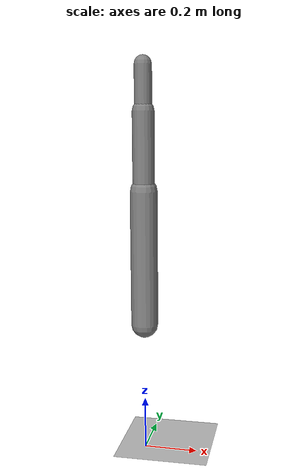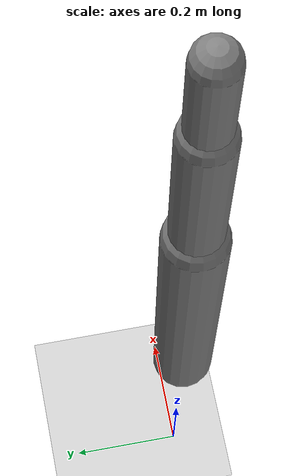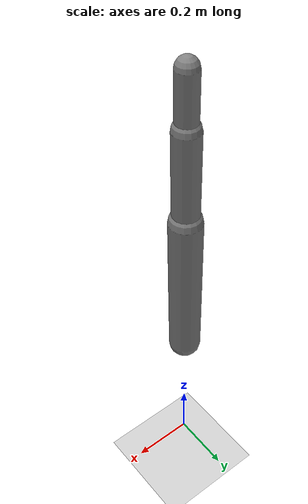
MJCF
<?xml version='1.0' encoding='UTF-8'?>
<mujoco model="RobotModel">
  <option gravity="0 0 -9.81" timestep="0.002" solver="CG" iterations="500" integrator="Euler"/>
  <worldbody>
    <geom name="Floor" type="plane" size="10 10 0.1" pos="0 0 0" rgba="0.8 0.8 0.8 1"/>
    <body name="Limb0" pos="0 0 0.5">
      <geom type="capsule" fromto="0 0 0 0 0 0.5" size="0.05" density="1000" contype="0" conaffinity="0"/>
      <body name="Limb0_8ba9c83d" pos="0 0 0.5">
        <geom type="capsule" fromto="0 0 0 0 0 0.28490010915531216" size="0.011627838527015384" density="800" contype="0" conaffinity="0"/>
        <body name="Limb1_8ba9c83d" pos="0 0 0.28490010915531216">
          <geom type="capsule" fromto="0 0 0 0 0 0.1575570989437559" size="0.03145330906980907" density="800" contype="0" conaffinity="0"/>
          <joint name="Joint_Limb0_8ba9c83d_Limb1_8ba9c83d_0" type="hinge" axis="0 1 0" range="-60 60"/>
        </body>
        <joint name="Joint_Limb0_Limb0_8ba9c83d_0" type="hinge" axis="0 1 0" range="-60 60"/>
      </body>
      <body name="Limb2_8ba9c83d" pos="0 0 0.5">
        <geom type="capsule" fromto="0 0 0 0 0 0.2838443106389239" size="0.039942799551903635" density="800" contype="0" conaffinity="0"/>
        <joint name="Joint_Limb0_Limb2_8ba9c83d_0" type="hinge" axis="0 1 0" range="-60 60"/>
      </body>
    </body>
  </worldbody>
  <actuator>
    <position name="position_Actuator_Joint_Limb0_Limb0_8ba9c83d_0" joint="Joint_Limb0_Limb0_8ba9c83d_0" gear="1.0"/>
    <position name="position_Actuator_Joint_Limb0_8ba9c83d_Limb1_8ba9c83d_0" joint="Joint_Limb0_8ba9c83d_Limb1_8ba9c83d_0" gear="1.0"/>
    <position name="position_Actuator_Joint_Limb0_Limb2_8ba9c83d_0" joint="Joint_Limb0_Limb2_8ba9c83d_0" gear="1.0"/>
  </actuator>
</mujoco>
